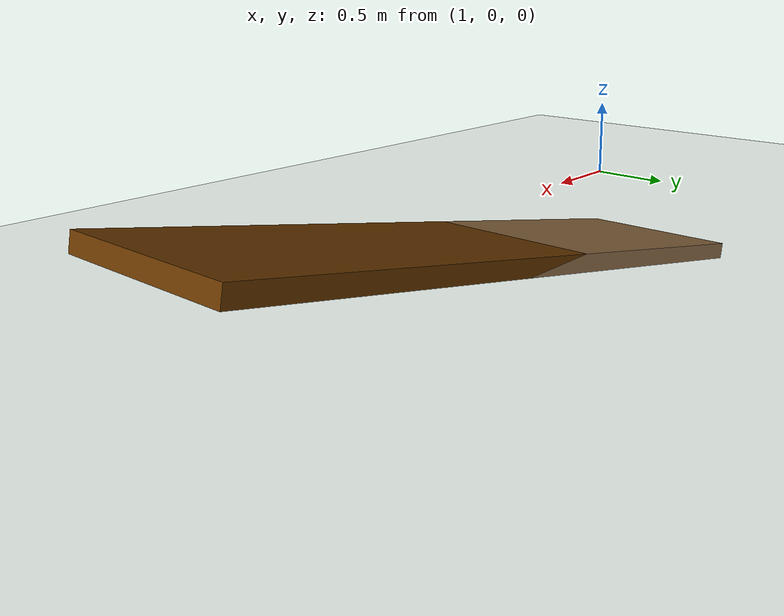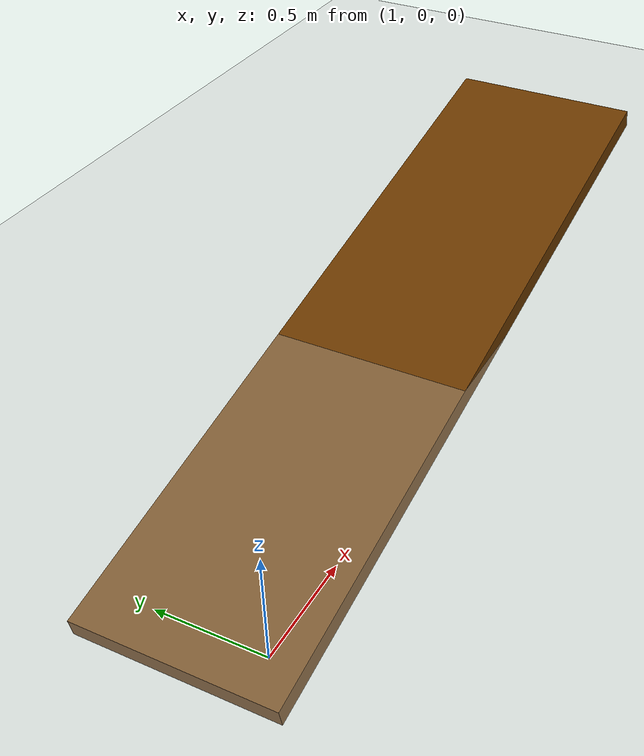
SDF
<?xml version="1.0" ?>
<sdf version="1.5">
    <world name="default">

        <physics type="ode">
        <max_step_size>0.0002</max_step_size>
        <real_time_factor>1</real_time_factor>
        <real_time_update_rate>5000</real_time_update_rate>

        <gravity>0 0 -9.81</gravity>
            <ode>
                <solver>
                <type>quick</type>
                <iters>50</iters>
                <sor>1.3</sor>
                </solver>
                <constraints>
                <cfm>0.0</cfm>
                <erp>0.2</erp>
                <contact_max_correcting_vel>10.0</contact_max_correcting_vel>
                <contact_surface_layer>0.001</contact_surface_layer>
                </constraints>
            </ode>
        </physics>

        <scene>
        <sky>
        </sky>
                <ambient>1 1 1 1</ambient>
                <background>0.7 0.7 0.7 1</background>
                <shadows>1</shadows>
        </scene>
        <!-- A global light source -->
        <include>
            <uri>model://sun</uri>
        </include>
        <!-- A ground plane -->
        <include>
            <uri>model://ground_plane</uri>
        </include>

        <model name="static_environment">
        <static>true</static>
            <link name="static_box">
                <pose>3 0.5 0 0 -0.20 0</pose>
                <collision name="static_box_collision">
                    <geometry>
                        <box>
                            <size>4 1 0.1</size>
                        </box>
                    </geometry>
                </collision>
                <visual name="static_box_visual">
                    <geometry>
                        <box>
                            <size>4 1 0.1</size>
                        </box>
                    </geometry>
                    <material>
                        <ambient>0.2 0.2 0.2 1.0</ambient>
                        <diffuse>.421 0.225 0.0 1.0</diffuse>
                    </material>
                </visual>
            </link>
        </model>

    </world>

</sdf>
